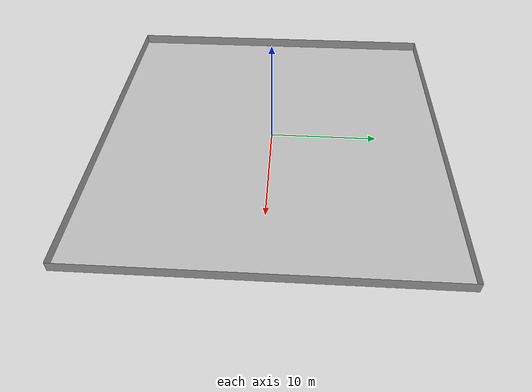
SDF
<?xml version='1.0' encoding='utf-8'?>
<sdf version="1.4">
<world name="33_thunder_hill_pro">
  <scene>
    <ambient>0.5 0.5 0.5 1.0</ambient>
    <shadows>0</shadows>
    <sky />
  </scene>
  <include>
    <uri>model://sun</uri>
    <pose>0.0 0.0 15.0 0 0 0</pose>
    <cast_shadows>false</cast_shadows>
    <attenuation>
      <constant>0.5</constant>
      <linear>0.01</linear>
      <quadratic>0.0</quadratic>
      <range>100</range>
    </attenuation>
  </include>
  <light name="Light 1" type="point">
         <pose>0 0 15 0 0 0</pose>
         <diffuse>0.225 0.225 0.225 1</diffuse>
         <specular>.1 .1 .1 1</specular>
         <attenuation>
                <constant>0.4</constant>
                <linear>0.01</linear>
                <quadratic>0.00</quadratic>
                <range>50</range>
         </attenuation>
         <direction>0 0 -1</direction>
         <cast_shadows>false</cast_shadows>
  </light>
  <include>
    <uri>model://models/33_thunder_hill_pro</uri>
    <pose>0 0 0 0 0 0</pose>
    <name>racetrack</name>
  </include>
</world>
</sdf>

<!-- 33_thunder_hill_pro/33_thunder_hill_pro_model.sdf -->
<sdf version="1.4">
<model name="33_thunder_hill_pro_model">
<link name="track">
<collision name="collision">
<pose>0 0 0 0 0 0</pose>
<geometry>
<mesh>
<uri>model://meshes/33_thunder_hill_pro/33_thunder_hill_pro_collision.dae</uri>
</mesh>
</geometry>
</collision>
<visual name="visual">
<pose>0 0 0 0 0 0</pose>
<geometry>
<mesh>
<uri>model://meshes/33_thunder_hill_pro/33_thunder_hill_pro.dae</uri>
</mesh>
</geometry>
</visual>
</link>
<static>1</static>
</model>
</sdf>
